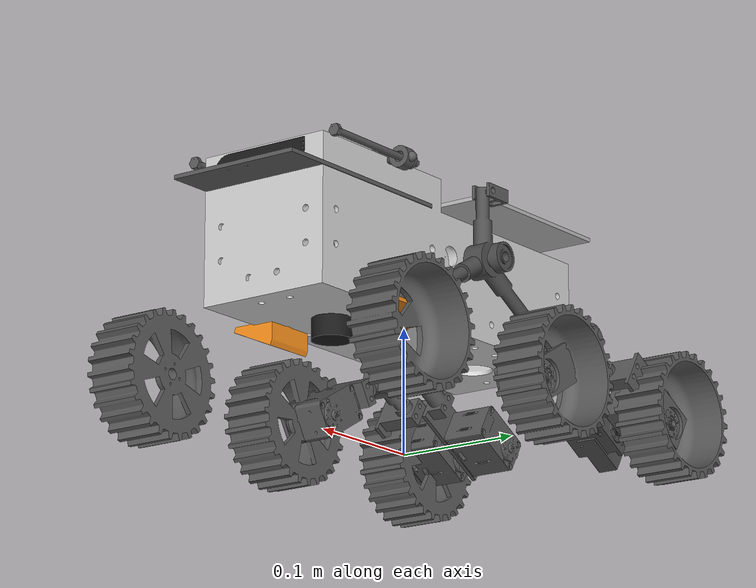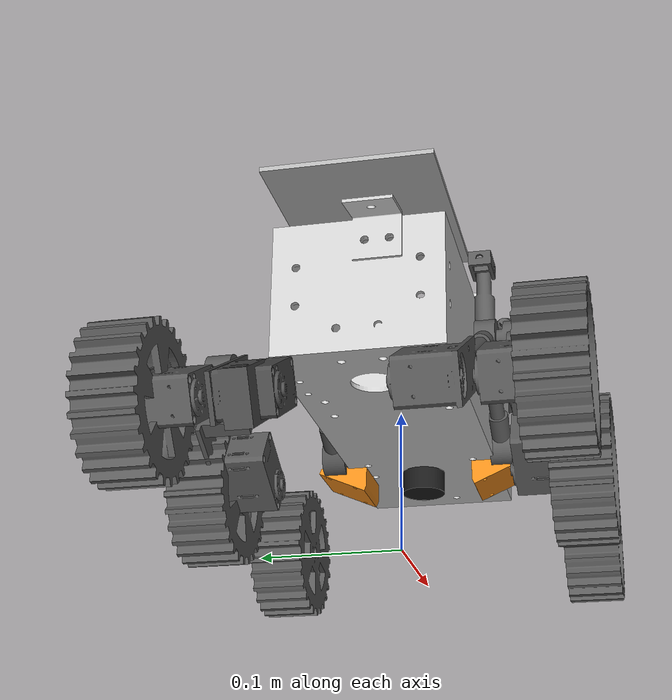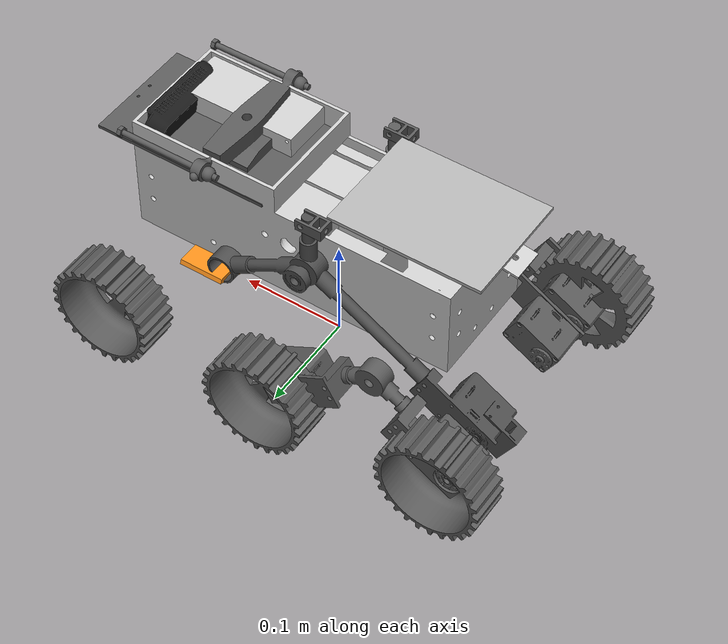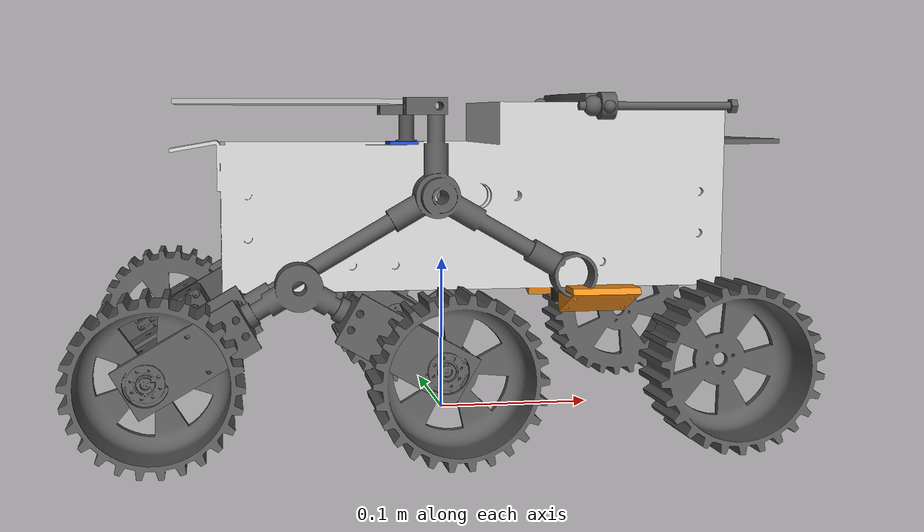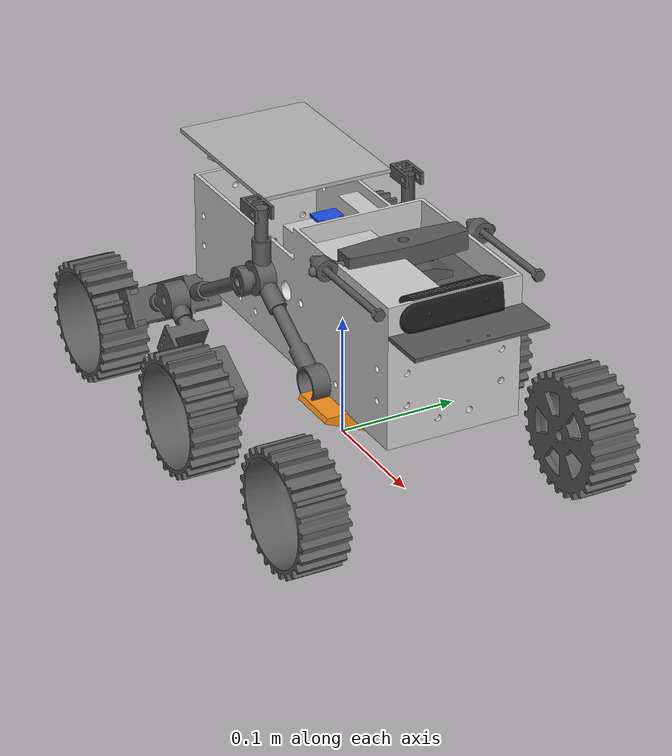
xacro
<?xml version="1.0"?>
<robot xmlns:xacro="http://www.ros.org/wiki/xacro" name="moonmapper">
  <!-- Author joint limits in degrees; URDF consumes radians -->
  <xacro:property name="deg" value="0.017453292519943295"/>
  <!-- pi/180 -->
  <!-- base_footprint ligger i hjulkontakt-plan (z=0 i footprint). base_link-origo er over: min hjul-senter-z i base_link ≈ −0,0792 m, r=0,045 → bunn ≈ −0,1242 m. -->
  <xacro:property name="base_link_z_above_footprint" value="0.1242"/>
  <!-- URDF mimic er for RViz. I Gazebo er mimic ofte av; prisme-ledd uten mimic blir ustabile — bruk use_gazebo:=true for fixed push-rod i sim. -->
  <xacro:arg name="enable_urdf_mimic" default="true"/>
  <xacro:arg name="use_gazebo" default="false"/>
  <!-- simple_collision_debug: kun hjul har kollisjon (ingen rocker/bogie/diff-bar) — anbefalt for Gazebo 6WD-traksjon. -->
  <xacro:arg name="simple_collision_debug" default="false"/>
  <!-- Gazebo urdf2sdf krever inertial på alle links; bruk på TF-only kamera-frames. -->
  <xacro:macro name="negligible_inertial">
    <inertial>
      <origin xyz="0 0 0" rpy="0 0 0"/>
      <mass value="1e-6"/>
      <inertia ixx="1e-12" ixy="0" ixz="0" iyy="1e-12" iyz="0" izz="1e-12"/>
    </inertial>
  </xacro:macro>
  <xacro:macro name="rocker_stl_collision" params="mesh_file">
    <collision>
      <origin xyz="0 0 0" rpy="0 0 0"/>
      <geometry>
        <mesh filename="package://moonmapper_description/meshes/visual/${mesh_file}" scale="1 1 1"/>
      </geometry>
    </collision>
  </xacro:macro>
  <xacro:macro name="rocker_primitive_collision">
  <!-- Raised/shrunk vs full STL: unngår at rocker-boks treffer regolith før hjulene (slip ved rotasjon). -->
    <collision>
      <origin xyz="0 0.010 0" rpy="0 0 0"/>
      <geometry>
        <box size="0.14 0.034 0.034"/>
      </geometry>
    </collision>
  </xacro:macro>
  <xacro:macro name="bogie_primitive_collision">
    <collision>
      <origin xyz="0 0.014 0" rpy="0 0 0"/>
      <geometry>
        <box size="0.10 0.040 0.028"/>
      </geometry>
    </collision>
  </xacro:macro>
  <xacro:macro name="wheel_primitive_collision">
    <collision>
      <origin xyz="0 0 0" rpy="1.5707963267948966 0 0"/>
      <geometry>
        <!-- Målt: r=0,045 m, bredde 0,039 m (sylinder-akse langs Y i link-frame). -->
        <cylinder radius="0.045" length="0.039"/>
      </geometry>
    </collision>
  </xacro:macro>
  <xacro:macro name="diff_bar_primitive_collision">
    <collision>
      <origin xyz="0 0 0" rpy="0 0 0"/>
      <geometry>
        <box size="0.16 0.028 0.028"/>
      </geometry>
    </collision>
  </xacro:macro>
  <!-- base_footprint: masseløst root-frame (REP-105). Masse, treghet og chassis-kollisjon ligger på base_link. -->
  <link name="base_footprint"/>
  <joint name="base_footprint_to_base_link" type="fixed">
    <parent link="base_footprint"/>
    <child link="base_link"/>
    <origin xyz="0 0 ${base_link_z_above_footprint}" rpy="0 0 0"/>
  </joint>
  <link name="base_link">
    <visual>
      <origin xyz="0 0 0" rpy="0 0 0"/>
      <geometry>
        <mesh filename="package://moonmapper_description/meshes/visual/robot_base.stl" scale="1 1 1"/>
      </geometry>
      <material name="gray">
        <color rgba="0.8 0.8 0.8 1.0"/>
      </material>
    </visual>
    <!-- simple_collision_debug: ingen base-bakkekontakt — liten sentrert boks ble «skrapekant» under nesa og ga varig nose-down uavhengig av spawn_z. -->
    <xacro:unless value="$(arg simple_collision_debug)">
    <collision>
      <!-- Primitiv boks, forskjøvet −X/+Z: front (stereo) er ca. +X; boks bakover/opp unngår at underkant tar bakken før hjulene finner likevekt. -->
      <origin xyz="-0.020 0 0.011" rpy="0 0 0"/>
      <geometry>
        <box size="0.048 0.025 0.018"/>
      </geometry>
    </collision>
    </xacro:unless>
    <!-- Gazebo krever inertial paa enhver dynamisk link. Målt masse 0,907 kg; treghet homogen boks 0,305×0,105×0,110 m (ixx=(1/12)m(y²+z²) osv.). -->
    <!-- ADVARSEL: +X er mot FRONT (stereo ~ +0.166 m). Aldri sett base_link inertial x negativ for å «løfte nesa» — det flytter masse BAKOVER. -->
    <inertial>
      <origin xyz="0.038 0 0.010" rpy="0 0 0"/>
      <mass value="0.907"/>
      <inertia ixx="0.0017487" ixy="0" ixz="0" iyy="0.0079457" iyz="0" izz="0.0078645"/>
    </inertial>
  </link>
  <!-- ===================================================================== HOEYRE SIDE ===================================================================== -->
  <link name="rocker_right_link">
    <visual>
      <origin xyz="0 0 0" rpy="0 0 0"/>
      <geometry>
        <mesh filename="package://moonmapper_description/meshes/visual/rocker_right_link.stl" scale="1 1 1"/>
      </geometry>
      <material name="dark_gray">
        <color rgba="0.3 0.3 0.3 1.0"/>
      </material>
    </visual>
    <xacro:unless value="$(arg simple_collision_debug)">
      <xacro:rocker_stl_collision mesh_file="rocker_right_link.stl"/>
    </xacro:unless>
    <inertial>
      <!-- Målt 0,166 kg/stk; treghet estimert som homogen boks = rocker_primitive_collision (0,16×0,042×0,042 m). -->
      <!-- Hjul l1 ligger ca. -0.16 m i X fra pivot; uten offset blir rocker for «tung» foran. Liten +X flytter rapportert CoM mot bogie (−X = bak langs armen). -->
      <origin xyz="0.030 0 -0.028" rpy="0 0 0"/>
      <mass value="0.166"/>
      <inertia ixx="0.0000488" ixy="0" ixz="0" iyy="0.0003785" iyz="0" izz="0.0003785"/>
    </inertial>
  </link>
  <joint name="rocker_right_joint" type="revolute">
    <parent link="base_link"/>
    <child link="rocker_right_link"/>
    <!-- Y: opprinnelig CAD/URDF (git). -->
    <origin xyz="-0.014227 0.065999 0.021756" rpy="0 0 0"/>
    <axis xyz="0 1 0"/>
    <!-- Moderate URDF-demping + Gazebo-kontakt; unngaa for hoey friksjon som låser rocker-bogie. -->
    <dynamics damping="0.10" friction="0.02"/>
    <limit lower="${-35*deg}" upper="${35*deg}" effort="20" velocity="6.0"/>
  </joint>
  <!-- Mellomstykket er sveiset fast i toppen av braketten. -->
  <link name="feste_mellom_feste_og_stang_right_link">
    <visual>
      <origin xyz="0 0 0" rpy="0 0 0"/>
      <geometry>
        <mesh filename="package://moonmapper_description/meshes/visual/feste_mellom_feste_og_stang_right_link.stl" scale="1 1 1"/>
      </geometry>
      <material name="moonmapper_dark_gray">
        <color rgba="0.35 0.35 0.35 1.0"/>
      </material>
    </visual>
    <!-- Målt bracket ~3 g; treghet grovt for liten boks (numerikk). -->
    <inertial>
      <origin xyz="0 0 0" rpy="0 0 0"/>
      <mass value="0.003"/>
      <inertia ixx="2e-8" ixy="0" ixz="0" iyy="2e-8" iyz="0" izz="2e-8"/>
    </inertial>
  </link>

  <xacro:unless value="$(arg use_gazebo)">
    <joint name="feste_mellom_feste_og_stang_right_joint" type="prismatic">
      <parent link="base_link"/>
      <child link="feste_mellom_feste_og_stang_right_link"/>
      <origin xyz="-0.013913 0.067245 0.076373" rpy="0 0 0"/>
      <axis xyz="1 0 0"/>
      <xacro:if value="$(arg enable_urdf_mimic)">
        <mimic joint="rocker_bogie_diff_joint" multiplier="0.05" offset="0.0"/>
      </xacro:if>
      <limit lower="${-1*deg}" upper="${1*deg}" effort="50" velocity="3.0"/>
    </joint>
  </xacro:unless>

  <xacro:if value="$(arg use_gazebo)">
    <joint name="feste_mellom_feste_og_stang_right_joint" type="fixed">
      <parent link="base_link"/>
      <child link="feste_mellom_feste_og_stang_right_link"/>
      <origin xyz="-0.013913 0.067245 0.076373" rpy="0 0 0"/>
    </joint>
  </xacro:if>
  <!-- Staget er sveiset fast i mellomstykket. Tupp-enden som fysisk skal kobles til rocker_bogie_diff_link holdes kun visuelt i naerheten; URDF-treet bryter sloeyfen her. -->
  <link name="stang_right_link">
    <visual>
      <origin xyz="0 0 0" rpy="0 0 0"/>
      <geometry>
        <mesh filename="package://moonmapper_description/meshes/visual/stang_right_link.stl" scale="1 1 1"/>
      </geometry>
      <material name="moonmapper_dark_gray">
        <color rgba="0.35 0.35 0.35 1.0"/>
      </material>
    </visual>
    <inertial>
      <origin xyz="0 0 0" rpy="0 0 0"/>
      <mass value="0.005"/>
      <inertia ixx="1e-8" ixy="0" ixz="0" iyy="1e-8" iyz="0" izz="1e-8"/>
    </inertial>
  </link>
  <xacro:unless value="$(arg use_gazebo)">
    <joint name="stang_right_joint" type="prismatic">
      <parent link="feste_mellom_feste_og_stang_right_link"/>
      <child link="stang_right_link"/>
      <origin xyz="0.101730 0.000140 0.000033" rpy="0 0 0"/>
      <axis xyz="1 0 0"/>
      <xacro:if value="$(arg enable_urdf_mimic)">
        <mimic joint="feste_mellom_feste_og_stang_right_joint" multiplier="0.05" offset="0.0"/>
      </xacro:if>
      <limit lower="${-1*deg}" upper="${1*deg}" effort="50" velocity="3.0"/>
    </joint>
  </xacro:unless>
  <xacro:if value="$(arg use_gazebo)">
    <joint name="stang_right_joint" type="fixed">
      <parent link="feste_mellom_feste_og_stang_right_link"/>
      <child link="stang_right_link"/>
      <origin xyz="0.101730 0.000140 0.000033" rpy="0 0 0"/>
    </joint>
  </xacro:if>

  <link name="feste_mellom_feste_og_stang_left_link">
    <visual>
      <origin xyz="0 0 0" rpy="0 0 0"/>
      <geometry>
        <mesh filename="package://moonmapper_description/meshes/visual/feste_mellom_feste_og_stang_left_link.stl" scale="1 1 1"/>
      </geometry>
      <material name="moonmapper_dark_gray">
        <color rgba="0.35 0.35 0.35 1.0"/>
      </material>
    </visual>
    <!-- Målt bracket ~3 g; treghet grovt for liten boks (numerikk). -->
    <inertial>
      <origin xyz="0 0 0" rpy="0 0 0"/>
      <mass value="0.003"/>
      <inertia ixx="2e-8" ixy="0" ixz="0" iyy="2e-8" iyz="0" izz="2e-8"/>
    </inertial>
  </link>

  <xacro:unless value="$(arg use_gazebo)">
    <joint name="feste_mellom_feste_og_stang_left_joint" type="prismatic">
      <parent link="base_link"/>
      <child link="feste_mellom_feste_og_stang_left_link"/>
      <origin xyz="-0.013977 -0.064006 0.076371" rpy="0 0 0"/>
      <xacro:if value="$(arg enable_urdf_mimic)">
        <mimic joint="rocker_bogie_diff_joint" multiplier="0.05" offset="0.0"/>
      </xacro:if>
      <axis xyz="-1 0 0"/>
      <limit lower="${-1*deg}" upper="${1*deg}" effort="50" velocity="3.0"/>
    </joint>
  </xacro:unless>
  <xacro:if value="$(arg use_gazebo)">
    <joint name="feste_mellom_feste_og_stang_left_joint" type="fixed">
      <parent link="base_link"/>
      <child link="feste_mellom_feste_og_stang_left_link"/>
      <origin xyz="-0.013977 -0.064006 0.076371" rpy="0 0 0"/>
    </joint>
  </xacro:if>

  <link name="stang_left_link">
    <visual>
      <origin xyz="0 0 0" rpy="0 0 0"/>
      <geometry>
        <mesh filename="package://moonmapper_description/meshes/visual/stang_left_link.stl" scale="1 1 1"/>
      </geometry>
      <material name="moonmapper_dark_gray">
        <color rgba="0.35 0.35 0.35 1.0"/>
      </material>
    </visual>
    <inertial>
      <origin xyz="0 0 0" rpy="0 0 0"/>
      <mass value="0.005"/>
      <inertia ixx="1e-8" ixy="0" ixz="0" iyy="1e-8" iyz="0" izz="1e-8"/>
    </inertial>
  </link>
  <xacro:unless value="$(arg use_gazebo)">

    <joint name="stang_left_joint" type="prismatic">
      <parent link="feste_mellom_feste_og_stang_left_link"/>
      <child link="stang_left_link"/>
      <origin xyz="0.101903 -0.001198 0.000110" rpy="0 0 0"/>
      <axis xyz="1 0 0"/>
      <xacro:if value="$(arg enable_urdf_mimic)">
        <mimic joint="feste_mellom_feste_og_stang_left_joint" multiplier="0.05" offset="0.0"/>
      </xacro:if>
      <limit lower="${-1*deg}" upper="${1*deg}" effort="50" velocity="3.0"/>
    </joint>
  </xacro:unless>
  <xacro:if value="$(arg use_gazebo)">
    <joint name="stang_left_joint" type="fixed">
      <parent link="feste_mellom_feste_og_stang_left_link"/>
      <child link="stang_left_link"/>
      <origin xyz="0.101903 -0.001198 0.000110" rpy="0 0 0"/>
    </joint>
  </xacro:if>

  <link name="bogie_right_link">
    <visual>
      <origin xyz="0 0 0" rpy="0 0 0"/>
      <geometry>
        <mesh filename="package://moonmapper_description/meshes/visual/bogie_right_link.stl" scale="1 1 1"/>
      </geometry>
      <material name="moonmapper_dark_gray">
        <color rgba="0.35 0.35 0.35 1.0"/>
      </material>
    </visual>
    <xacro:unless value="$(arg simple_collision_debug)">
      <xacro:rocker_stl_collision mesh_file="bogie_right_link.stl"/>
    </xacro:unless>
    <inertial>
      <!-- Målt 0,112 kg/stk; treghet homogen boks = bogie_primitive_collision (0,12×0,052×0,052 m). -->
      <origin xyz="0 0 0" rpy="0 0 0"/>
      <mass value="0.112"/>
      <inertia ixx="0.0000505" ixy="0" ixz="0" iyy="0.0001596" iyz="0" izz="0.0001596"/>
    </inertial>
  </link>
  <joint name="bogie_right_joint" type="revolute">
    <parent link="rocker_right_link"/>
    <child link="bogie_right_link"/>
    <!-- Origin = (gammel bogie-in-feste-frame) - (gammel rocker-in-feste-frame). -->
    <origin xyz="-0.087545 0.025322 -0.050495" rpy="0 0 0"/>
    <axis xyz="0 1 0"/>
    <dynamics damping="0.08" friction="0.015"/>
    <limit lower="${-45*deg}" upper="${45*deg}" effort="20" velocity="6.0"/>
  </joint>
  <!-- Hoeyre hjul: r1 paa rocker, r2+r3 paa bogie. Continuous (ingen limits). -->
  <link name="wheel_r1_link">
    <visual>
      <origin xyz="0 0 0" rpy="0 0 0"/>
      <geometry>
        <mesh filename="package://moonmapper_description/meshes/visual/wheel_r1_link.stl" scale="1 1 1"/>
      </geometry>
      <material name="moonmapper_dark_gray">
        <color rgba="0.35 0.35 0.35 1.0"/>
      </material>
    </visual>
    <xacro:wheel_primitive_collision/>
    <inertial>
      <!-- Hjul 0,048 kg + tidl. motor 0,062 kg slatt inn i hjullink (ingen motor_*); sylinder om Y, r=0,045, w=0,039, m=0,11. -->
      <origin xyz="0 0 0" rpy="0 0 0"/>
      <mass value="0.110"/>
      <inertia ixx="0.0000697" ixy="0" ixz="0" iyy="0.0001114" iyz="0" izz="0.0000697"/>
    </inertial>
  </link>

  <joint name="wheel_r1_joint" type="continuous">
    <parent link="rocker_right_link"/>
    <child link="wheel_r1_link"/>
    <origin xyz="0.170916 0.039688 -0.099612" rpy="0 0 0"/>
    <axis xyz="0 1 0"/>
    <dynamics damping="0.01" friction="0.0"/>
    <limit effort="60.0" velocity="40.0"/>
  </joint>
  <link name="wheel_r2_link">
    <visual>
      <origin xyz="0 0 0" rpy="0 0 0"/>
      <geometry>
        <mesh filename="package://moonmapper_description/meshes/visual/wheel_r2_link.stl" scale="1 1 1"/>
      </geometry>
      <material name="moonmapper_dark_gray">
        <color rgba="0.35 0.35 0.35 1.0"/>
      </material>
    </visual>
    <xacro:wheel_primitive_collision/>
    <inertial>
      <!-- Hjul 0,048 kg + tidl. motor 0,062 kg slatt inn i hjullink (ingen motor_*); sylinder om Y, r=0,045, w=0,039, m=0,11. -->
      <origin xyz="0 0 0" rpy="0 0 0"/>
      <mass value="0.110"/>
      <inertia ixx="0.0000697" ixy="0" ixz="0" iyy="0.0001114" iyz="0" izz="0.0000697"/>
    </inertial>
  </link>

  <joint name="wheel_r2_joint" type="continuous">
    <parent link="bogie_right_link"/>
    <child link="wheel_r2_link"/>
    <origin xyz="0.088585 0.022644 -0.050672" rpy="0 0 0"/>
    <axis xyz="0 1 0"/>
    <dynamics damping="0.01" friction="0.0"/>
    <limit effort="60.0" velocity="40.0"/>
  </joint>
  <link name="wheel_r3_link">
    <visual>
      <origin xyz="0 0 0" rpy="0 0 0"/>
      <geometry>
        <mesh filename="package://moonmapper_description/meshes/visual/wheel_r3_link.stl" scale="1 1 1"/>
      </geometry>
      <material name="moonmapper_dark_gray">
        <color rgba="0.35 0.35 0.35 1.0"/>
      </material>
    </visual>
    <xacro:wheel_primitive_collision/>
    <inertial>
      <!-- Hjul 0,048 kg + tidl. motor 0,062 kg slatt inn i hjullink (ingen motor_*); sylinder om Y, r=0,045, w=0,039, m=0,11. -->
      <origin xyz="0 0 0" rpy="0 0 0"/>
      <mass value="0.110"/>
      <inertia ixx="0.0000697" ixy="0" ixz="0" iyy="0.0001114" iyz="0" izz="0.0000697"/>
    </inertial>
  </link>

  <joint name="wheel_r3_joint" type="continuous">
    <parent link="bogie_right_link"/>
    <child link="wheel_r3_link"/>
    <origin xyz="-0.081571 0.016915 -0.048426" rpy="0 0 0"/>
    <axis xyz="0 1 0"/>
    <dynamics damping="0.01" friction="0.0"/>
    <limit effort="60.0" velocity="40.0"/>
  </joint>
  <!-- ===================================================================== VENSTRE SIDE (speilbilde av hoeyre) ===================================================================== -->
  <link name="rocker_left_link">
    <visual>
      <origin xyz="0 0 0" rpy="0 0 0"/>
      <geometry>
        <mesh filename="package://moonmapper_description/meshes/visual/rocker_left_link.stl" scale="1 1 1"/>
      </geometry>
      <material name="moonmapper_dark_gray">
        <color rgba="0.35 0.35 0.35 1.0"/>
      </material>
    </visual>
    <xacro:unless value="$(arg simple_collision_debug)">
      <xacro:rocker_stl_collision mesh_file="rocker_left_link.stl"/>
    </xacro:unless>
    <!-- Samme masse/treghet som rocker_right (speilet mekanikk). -->
    <inertial>
      <origin xyz="0.030 0 -0.028" rpy="0 0 0"/>
      <mass value="0.166"/>
      <inertia ixx="0.0000488" ixy="0" ixz="0" iyy="0.0003785" iyz="0" izz="0.0003785"/>
    </inertial>
  </link>

  <joint name="rocker_left_joint" type="revolute">
    <parent link="base_link"/>
    <child link="rocker_left_link"/>
    <!-- Opprinnelig URDF (git). -->
    <origin xyz="-0.014252 -0.064048 0.021830" rpy="0 0 0"/>
    <axis xyz="0 1 0"/>
    <dynamics damping="0.10" friction="0.02"/>
    <limit lower="${-35*deg}" upper="${35*deg}" effort="20" velocity="6.0"/>
    <xacro:if value="$(arg enable_urdf_mimic)">
      <mimic joint="rocker_right_joint" multiplier="-1.0" offset="0.0"/>
    </xacro:if>
  </joint>
  <!-- Bogie venstre. Origin = (0.013707,0.001287,-0.008001)-(-0.013851,0.001264,-0.007984) = (0.027558, 0.000023, -0.000017) -->
  <link name="bogie_left_link">
    <visual>
      <origin xyz="0 0 0" rpy="0 0 0"/>
      <geometry>
        <mesh filename="package://moonmapper_description/meshes/visual/bogie_left_link.stl" scale="1 1 1"/>
      </geometry>
      <material name="moonmapper_dark_gray">
        <color rgba="0.35 0.35 0.35 1.0"/>
      </material>
    </visual>
    <xacro:unless value="$(arg simple_collision_debug)">
      <xacro:rocker_stl_collision mesh_file="bogie_left_link.stl"/>
    </xacro:unless>
    <inertial>
      <!-- Målt 0,112 kg/stk; treghet homogen boks = bogie_primitive_collision (0,12×0,052×0,052 m). -->
      <origin xyz="0 0 0" rpy="0 0 0"/>
      <mass value="0.112"/>
      <inertia ixx="0.0000505" ixy="0" ixz="0" iyy="0.0001596" iyz="0" izz="0.0001596"/>
    </inertial>
  </link>

  <joint name="bogie_left_joint" type="revolute">
    <parent link="rocker_left_link"/>
    <child link="bogie_left_link"/>
    <origin xyz="-0.087063 -0.025935 -0.050645" rpy="0 0 0"/>
    <axis xyz="0 1 0"/>
    <dynamics damping="0.08" friction="0.015"/>
    <limit lower="${-45*deg}" upper="${45*deg}" effort="20" velocity="6.0"/>
  </joint>
  <!-- Venstre hjul: l1 paa rocker, l2+l3 paa bogie. Continuous (ingen limits). -->
  <link name="wheel_l1_link">
    <visual>
      <origin xyz="0 0 0" rpy="0 0 0"/>
      <geometry>
        <mesh filename="package://moonmapper_description/meshes/visual/wheel_l1_link.stl" scale="1 1 1"/>
      </geometry>
      <material name="moonmapper_dark_gray">
        <color rgba="0.35 0.35 0.35 1.0"/>
      </material>
    </visual>
    <xacro:wheel_primitive_collision/>
    <inertial>
      <!-- Hjul 0,048 kg + tidl. motor 0,062 kg slatt inn i hjullink (ingen motor_*); sylinder om Y, r=0,045, w=0,039, m=0,11. -->
      <origin xyz="0 0 0" rpy="0 0 0"/>
      <mass value="0.110"/>
      <inertia ixx="0.0000697" ixy="0" ixz="0" iyy="0.0001114" iyz="0" izz="0.0000697"/>
    </inertial>
  </link>

  <joint name="wheel_l1_joint" type="continuous">
    <parent link="rocker_left_link"/>
    <child link="wheel_l1_link"/>
    <origin xyz="0.170218 -0.040994 -0.100687" rpy="0 0 0"/>
    <axis xyz="0 1 0"/>
    <dynamics damping="0.01" friction="0.0"/>
    <limit effort="60.0" velocity="40.0"/>
  </joint>

  <link name="wheel_l2_link">
    <visual>
      <origin xyz="0 0 0" rpy="0 0 0"/>
      <geometry>
        <mesh filename="package://moonmapper_description/meshes/visual/wheel_l2_link.stl" scale="1 1 1"/>
      </geometry>
      <material name="moonmapper_dark_gray">
        <color rgba="0.35 0.35 0.35 1.0"/>
      </material>
    </visual>
    <xacro:wheel_primitive_collision/>
    <inertial>
      <!-- Hjul 0,048 kg + tidl. motor 0,062 kg slatt inn i hjullink (ingen motor_*); sylinder om Y, r=0,045, w=0,039, m=0,11. -->
      <origin xyz="0 0 0" rpy="0 0 0"/>
      <mass value="0.110"/>
      <inertia ixx="0.0000697" ixy="0" ixz="0" iyy="0.0001114" iyz="0" izz="0.0000697"/>
    </inertial>
  </link>

  <joint name="wheel_l2_joint" type="continuous">
    <parent link="bogie_left_link"/>
    <child link="wheel_l2_link"/>
    <origin xyz="0.087657 -0.020188 -0.050374" rpy="0 0 0"/>
    <axis xyz="0 1 0"/>
    <dynamics damping="0.01" friction="0.0"/>
    <limit effort="60.0" velocity="40.0"/>
  </joint>
  <link name="wheel_l3_link">
    <visual>
      <origin xyz="0 0 0" rpy="0 0 0"/>
      <geometry>
        <mesh filename="package://moonmapper_description/meshes/visual/wheel_l3_link.stl" scale="1 1 1"/>
      </geometry>
      <material name="moonmapper_dark_gray">
        <color rgba="0.35 0.35 0.35 1.0"/>
      </material>
    </visual>
    <xacro:wheel_primitive_collision/>
    <inertial>
      <!-- Hjul 0,048 kg + tidl. motor 0,062 kg slatt inn i hjullink (ingen motor_*); sylinder om Y, r=0,045, w=0,039, m=0,11. -->
      <origin xyz="0 0 0" rpy="0 0 0"/>
      <mass value="0.110"/>
      <inertia ixx="0.0000697" ixy="0" ixz="0" iyy="0.0001114" iyz="0" izz="0.0000697"/>
    </inertial>
  </link>
  <!-- wheel l3 joint -->
  <joint name="wheel_l3_joint" type="continuous">
    <parent link="bogie_left_link"/>
    <child link="wheel_l3_link"/>
    <origin xyz="-0.082028 -0.018253 -0.048350" rpy="0 0 0"/>
    <axis xyz="0 1 0"/>
    <dynamics damping="0.01" friction="0.0"/>
    <limit effort="60.0" velocity="40.0"/>
  </joint>
  <transmission name="wheel_l1_trans">
    <type>transmission_interface/SimpleTransmission</type>
    <joint name="wheel_l1_joint">
      <hardwareInterface>hardware_interface/VelocityJointInterface</hardwareInterface>
    </joint>
    <actuator name="wheel_l1_motor">
      <hardwareInterface>hardware_interface/VelocityJointInterface</hardwareInterface>
      <mechanicalReduction>1</mechanicalReduction>
    </actuator>
  </transmission>
  <transmission name="wheel_l2_trans">
    <type>transmission_interface/SimpleTransmission</type>
    <joint name="wheel_l2_joint">
      <hardwareInterface>hardware_interface/VelocityJointInterface</hardwareInterface>
    </joint>
    <actuator name="wheel_l2_motor">
      <hardwareInterface>hardware_interface/VelocityJointInterface</hardwareInterface>
      <mechanicalReduction>1</mechanicalReduction>
    </actuator>
  </transmission>
  <transmission name="wheel_l3_trans">
    <type>transmission_interface/SimpleTransmission</type>
    <joint name="wheel_l3_joint">
      <hardwareInterface>hardware_interface/VelocityJointInterface</hardwareInterface>
    </joint>
    <actuator name="wheel_l3_motor">
      <hardwareInterface>hardware_interface/VelocityJointInterface</hardwareInterface>
      <mechanicalReduction>1</mechanicalReduction>
    </actuator>
  </transmission>
  <transmission name="wheel_r1_trans">
    <type>transmission_interface/SimpleTransmission</type>
    <joint name="wheel_r1_joint">
      <hardwareInterface>hardware_interface/VelocityJointInterface</hardwareInterface>
    </joint>
    <actuator name="wheel_r1_motor">
      <hardwareInterface>hardware_interface/VelocityJointInterface</hardwareInterface>
      <mechanicalReduction>1</mechanicalReduction>
    </actuator>
  </transmission>
  <transmission name="wheel_r2_trans">
    <type>transmission_interface/SimpleTransmission</type>
    <joint name="wheel_r2_joint">
      <hardwareInterface>hardware_interface/VelocityJointInterface</hardwareInterface>
    </joint>
    <actuator name="wheel_r2_motor">
      <hardwareInterface>hardware_interface/VelocityJointInterface</hardwareInterface>
      <mechanicalReduction>1</mechanicalReduction>
    </actuator>
  </transmission>
  <transmission name="wheel_r3_trans">
    <type>transmission_interface/SimpleTransmission</type>
    <joint name="wheel_r3_joint">
      <hardwareInterface>hardware_interface/VelocityJointInterface</hardwareInterface>
    </joint>
    <actuator name="wheel_r3_motor">
      <hardwareInterface>hardware_interface/VelocityJointInterface</hardwareInterface>
      <mechanicalReduction>1</mechanicalReduction>
    </actuator>
  </transmission>
  <!-- feste_rocker_karosseri maa defineres FOER rocker_bogie_diff_joint (foreldre-link). -->
  <link name="feste_rocker_karosseri_link">
    <visual>
      <origin xyz="0 0 0" rpy="0 0 0"/>
      <geometry>
        <mesh filename="package://moonmapper_description/meshes/visual/feste_rocker_til_karosseri_link.stl" scale="1 1 1"/>
      </geometry>
      <material name="moonmapper_dark_gray">
        <color rgba="0.35 0.35 0.35 1.0"/>
      </material>
    </visual>
    <inertial>
      <!-- Målt stand/lang skrue ~0,020 kg; treghet estimert som liten boks ~25×25×15 mm. -->
      <origin xyz="0 0 0" rpy="0 0 0"/>
      <mass value="0.020"/>
      <inertia ixx="1.4e-6" ixy="0" ixz="0" iyy="2.1e-6" iyz="0" izz="2.1e-6"/>
    </inertial>
  </link>

  <joint name="feste_rocker_karosseri_joint" type="fixed">
    <parent link="base_link"/>
    <child link="feste_rocker_karosseri_link"/>
    <origin xyz="0.091894 0.000000 0.061503" rpy="0 0 0"/>
  </joint>

  <link name="rocker_bogie_diff_link">
    <visual>
      <origin xyz="0 0 0" rpy="0 0 0"/>
      <geometry>
        <mesh filename="package://moonmapper_description/meshes/visual/rocker_bogie_diff_link.stl" scale="1 1 1"/>
      </geometry>
      <material name="moonmapper_dark_gray">
        <color rgba="0.35 0.35 0.35 1.0"/>
      </material>
    </visual>
    <xacro:unless value="$(arg simple_collision_debug)">
      <xacro:rocker_stl_collision mesh_file="rocker_bogie_diff_link.stl"/>
    </xacro:unless>
    <!-- Målt diff-stav 0,060 kg; treghet homogen boks = diff_bar_primitive_collision (0,16×0,028×0,028 m). -->
    <inertial>
      <origin xyz="0 0 0" rpy="0 0 0"/>
      <mass value="0.060"/>
      <inertia ixx="0.00000784" ixy="0" ixz="0" iyy="0.0001319" iyz="0" izz="0.0001319"/>
    </inertial>
  </link>
  <link name="stang_left_tip_link">
    <!-- Bruk primitiv visual her: mesh-filene hengsel_diff_* finnes ikke i moonmapper_description/meshes/visual i denne repo-versjonen. -->
    <visual>
      <origin xyz="0 0 0" rpy="0 0 0"/>
      <geometry>
        <sphere radius="0.004"/>
      </geometry>
      <material name="moonmapper_dark_gray">
        <color rgba="0.35 0.35 0.35 1.0"/>
      </material>
    </visual>
    <inertial>
      <origin xyz="0 0 0" rpy="0 0 0"/>
      <mass value="0.001"/>
      <inertia ixx="1e-8" ixy="0" ixz="0" iyy="1e-8" iyz="0" izz="1e-8"/>
    </inertial>
  </link>
  <joint name="stang_left_tip_joint" type="fixed">
    <parent link="rocker_bogie_diff_link"/>
    <child link="stang_left_tip_link"/>
    <origin xyz="0.0 0.0747 0.0" rpy="0 0 0"/>
  </joint>
  <link name="stang_right_tip_link">
    <visual>
      <origin xyz="0 0 0" rpy="0 0 0"/>
      <geometry>
        <sphere radius="0.004"/>
      </geometry>
      <material name="moonmapper_dark_gray">
        <color rgba="0.35 0.35 0.35 1.0"/>
      </material>
    </visual>
    <inertial>
      <origin xyz="0 0 0" rpy="0 0 0"/>
      <mass value="0.001"/>
      <inertia ixx="1e-8" ixy="0" ixz="0" iyy="1e-8" iyz="0" izz="1e-8"/>
    </inertial>
  </link>
  <joint name="stang_right_tip_joint" type="fixed">
    <parent link="rocker_bogie_diff_link"/>
    <child link="stang_right_tip_link"/>
    <origin xyz="0.0 -0.0747 0.0" rpy="0 0 0"/>
  </joint>
  <joint name="rocker_bogie_diff_joint" type="revolute">
    <parent link="feste_rocker_karosseri_link"/>
    <child link="rocker_bogie_diff_link"/>
    <origin xyz="0.000109 0.001094 0.014506" rpy="0 0 0"/>
    <axis xyz="0 0 1"/>
    <!-- Diff-staven er lett; lav URDF-demping så plugin/terreng ikke konkurrerer. -->
    <dynamics damping="0.05" friction="0.015"/>
    <!-- Høy effort/velocity-limit slik at passiv diff ikke klipper unødig. -->
    <limit lower="${-90*deg}" upper="${90*deg}" effort="100" velocity="10.0"/>
    <xacro:if value="$(arg enable_urdf_mimic)">
      <mimic joint="rocker_right_joint" multiplier="0.82" offset="0.0"/>
    </xacro:if>
  </joint>
  <!-- === Tak (skroghette over kjernen av chassiset) === -->
  <link name="tak_liten_link">
    <visual>
      <origin xyz="0 0 0" rpy="0 0 0"/>
      <geometry>
        <mesh filename="package://moonmapper_description/meshes/visual/Tak_liten_link.stl" scale="1 1 1"/>
      </geometry>
      <material name="moonmapper_light_gray">
        <color rgba="0.7 0.7 0.7 1.0"/>
      </material>
    </visual>
    <inertial>
      <origin xyz="0 0 0" rpy="0 0 0"/>
      <mass value="0.010"/>
      <inertia ixx="1e-7" ixy="0" ixz="0" iyy="1e-7" iyz="0" izz="1e-7"/>
    </inertial>
  </link>
  <joint name="tak_liten_joint" type="fixed">
    <parent link="base_link"/>
    <child link="tak_liten_link"/>
    <origin xyz="-0.100194 0.000939 0.079219" rpy="0 0 0"/>
  </joint>
  <!-- SENSORER: IMU + stereokamera -->
  <!-- Linkene defineres her i base-URDF slik at BAADE RViz og Gazebo -->
  <!-- ser samme kinematikk/TF. Fysikk- og sensor-tag-ene ligger i -->
  <!-- moonmapper_rover_gazebo.urdf.xacro (aktiveres kun i sim). -->
  <!-- === IMU (midten av basen, like over CG) === -->
  <!-- Bruker nytt STL-mesh fra Blender. Om meshen vises forskjoevet, sett joint-origo til "0 0 0" (hvis mesh-koordinater allerede er i base_link-frame) eller oppgi reell xyz fra Blender. -->
  <link name="imu_link">
    <visual>
      <origin xyz="0 0 0" rpy="0 0 0"/>
      <geometry>
        <mesh filename="package://moonmapper_description/meshes/visual/IMU_link.stl" scale="1 1 1"/>
      </geometry>
      <material name="imu_blue">
        <color rgba="0.1 0.3 0.9 1.0"/>
      </material>
    </visual>
    <inertial>
      <origin xyz="0 0 0" rpy="0 0 0"/>
      <mass value="0.002"/>
      <inertia ixx="1e-8" ixy="0" ixz="0" iyy="1e-8" iyz="0" izz="1e-8"/>
    </inertial>
  </link>
  <joint name="imu_joint" type="fixed">
    <parent link="base_link"/>
    <child link="imu_link"/>
    <origin xyz="-0.020281 0.000988 0.052512" rpy="0 0 0"/>
  </joint>
  <!-- === Stereokamera-hus (fronten av basen) === -->
  <!-- Mesh er ~4x13x4 mm, oppgitt i meter. Plasseres paa fronten av basen, litt over toppen. -->
  <link name="stereo_camera_link">
    <visual>
      <origin xyz="0 0 0" rpy="0 0 0"/>
      <geometry>
        <mesh filename="package://moonmapper_description/meshes/visual/steriokamera_link.stl" scale="1 1 1"/>
      </geometry>
      <material name="cam_black">
        <color rgba="0.1 0.1 0.1 1.0"/>
      </material>
    </visual>
    <!-- Ingen kollisjon i Gazebo; sensorer festes på base_link (gz-xacro). -->
    <xacro:unless value="$(arg use_gazebo)">
      <xacro:unless value="$(arg simple_collision_debug)">
        <collision>
          <origin xyz="0 0 0" rpy="0 0 0"/>
          <geometry>
            <mesh filename="package://moonmapper_description/meshes/visual/steriokamera_link.stl" scale="1 1 1"/>
          </geometry>
        </collision>
      </xacro:unless>
    </xacro:unless>
    <xacro:if value="$(arg use_gazebo)">
      <xacro:negligible_inertial/>
    </xacro:if>
    <xacro:unless value="$(arg use_gazebo)">
      <inertial>
        <origin xyz="0 0 0" rpy="0 0 0"/>
        <mass value="0.002"/>
        <inertia ixx="2e-7" ixy="0" ixz="0" iyy="2e-7" iyz="0" izz="2e-7"/>
      </inertial>
    </xacro:unless>
  </link>
  <joint name="stereo_camera_joint" type="fixed">
    <parent link="base_link"/>
    <child link="stereo_camera_link"/>
    <!-- Front = +X i base_link (REP-103). π rundt Z speiler CAD-mesh slik at huset sitter på nesa. -->
    <origin xyz="0.165483 0.004944 0.068584" rpy="0 0 0"/>
  </joint>
  <!-- === Venstre kamera: fysisk frame + optisk frame === -->
  <!-- Venstre = +y (ROS: +y peker til venstre) -->
  <!-- === Venstre kamera === -->
  <link name="stereo_left_camera_link">
    <xacro:negligible_inertial/>
  </link>

  <joint name="stereo_left_camera_joint" type="fixed">
    <parent link="stereo_camera_link"/>
    <child link="stereo_left_camera_link"/>
    <origin xyz="0.032910 0.034100 0.002791" rpy="0 0 0"/>
  </joint>

  <link name="stereo_left_optical_frame"/>

  <joint name="stereo_left_optical_joint" type="fixed">
    <parent link="stereo_left_camera_link"/>
    <child link="stereo_left_optical_frame"/>
    <origin xyz="0 0 0" rpy="-1.57079632679 0 -1.57079632679"/>
  </joint>

  <!-- === Høyre kamera === -->
  <link name="stereo_right_camera_link">
    <xacro:negligible_inertial/>
  </link>

  <joint name="stereo_right_camera_joint" type="fixed">
    <parent link="stereo_camera_link"/>
    <child link="stereo_right_camera_link"/>
    <origin xyz="0.032910 -0.032034 0.002791" rpy="0 0 0"/>
  </joint>

  <link name="stereo_right_optical_frame"/>

  <joint name="stereo_right_optical_joint" type="fixed">
    <parent link="stereo_right_camera_link"/>
    <child link="stereo_right_optical_frame"/>
    <origin xyz="0 0 0" rpy="-1.57079632679 0 -1.57079632679"/>
  </joint>
  <link name="depth_camera_link">
    <xacro:negligible_inertial/>
  </link>
  <joint name="depth_camera_joint" type="fixed">
    <parent link="stereo_camera_link"/>
    <child link="depth_camera_link"/>
    <origin xyz="0.039709 0.002014 0.002791" rpy="0 0 0"/>
  </joint>
  <link name="depth_camera_optical_frame"/>

  <joint name="depth_camera_optical_joint" type="fixed">
    <parent link="depth_camera_link"/>
    <child link="depth_camera_optical_frame"/>
    <!-- ROS optical frame: x=right, y=down, z=forward -->
    <origin xyz="0 0 0" rpy="-1.57079632679 0 -1.57079632679"/>
  </joint>
  <!-- NYE KOMPONENTER fra Blender-modellen -->
  <!-- Alle joint-origos er satt til "0 0 0" og forutsetter at -->
  <!-- STL-meshen ble eksportert UTEN aa re-origine objektet i -->
  <!-- Blender - dvs. at vertex-koordinater staar i foreldrens frame -->
  <!-- (typisk base_link/world). Hvis noe vises forskjoevet i RViz, -->
  <!-- oppdater joint-origo til Blender-lokasjonen til objektet. -->
  <!-- === Braketter som kobler rocker til bogie-pivot (venstre/hoeyre) === -->
  <!-- Festet til rocker-linken slik at bracketen roterer med rockeren. -->
  <!-- === Hall-effekt-sensor (festet paa basen for rotasjonsmaaling) === -->
  <!-- === Mikroskop (nede-pekende observasjonskamera) === -->
  <link name="mikroskop_link">
    <visual>
      <origin xyz="0 0 0" rpy="0 0 0"/>
      <geometry>
        <mesh filename="package://moonmapper_description/meshes/visual/Mikroskop_link.stl" scale="1 1 1"/>
      </geometry>
      <material name="cam_black">
        <color rgba="0.1 0.1 0.1 1.0"/>
      </material>
    </visual>
    <inertial>
      <origin xyz="0 0 0" rpy="0 0 0"/>
      <mass value="0.005"/>
      <inertia ixx="1e-8" ixy="0" ixz="0" iyy="1e-8" iyz="0" izz="1e-8"/>
    </inertial>
  </link>
  <joint name="mikroskop_joint" type="fixed">
    <parent link="base_link"/>
    <child link="mikroskop_link"/>
    <origin xyz="0.091849 0.001046 -0.006375" rpy="0 0 0"/>
  </joint>
  <!-- Optisk frame for mikroskop (ROS optical convention) -->
  <link name="mikroskop_optical_frame"/>
  <joint name="mikroskop_optical_joint" type="fixed">
    <parent link="mikroskop_link"/>
    <child link="mikroskop_optical_frame"/>
    <!-- ROS optical frame: x=right, y=down, z=forward -->
    <origin xyz="0 0 0" rpy="-0 0 -0"/>
  </joint>
  <!-- === Triad-sensorer (magnetometer/solvektor) === -->
  <link name="triad_sensor_1_link">
    <visual>
      <origin xyz="0 0 0" rpy="0 0 0"/>
      <geometry>
        <mesh filename="package://moonmapper_description/meshes/visual/triadsensor1_link.stl" scale="1 1 1"/>
      </geometry>
      <material name="triad_orange">
        <color rgba="0.95 0.55 0.1 1.0"/>
      </material>
    </visual>
    <inertial>
      <origin xyz="0 0 0" rpy="0 0 0"/>
      <mass value="0.002"/>
      <inertia ixx="1e-9" ixy="0" ixz="0" iyy="1e-9" iyz="0" izz="1e-9"/>
    </inertial>
  </link>
  <joint name="triad_sensor_1_joint" type="fixed">
    <parent link="base_link"/>
    <child link="triad_sensor_1_link"/>
    <origin xyz="0.091911 -0.046088 -0.043464" rpy="0 0 0"/>
  </joint>
  <link name="triad_sensor_2_link">
    <visual>
      <origin xyz="0 0 0" rpy="0 0 0"/>
      <geometry>
        <mesh filename="package://moonmapper_description/meshes/visual/triadsensor2_link.stl" scale="1 1 1"/>
      </geometry>
      <material name="triad_orange">
        <color rgba="0.95 0.55 0.1 1.0"/>
      </material>
    </visual>
    <inertial>
      <origin xyz="0 0 0" rpy="0 0 0"/>
      <mass value="0.002"/>
      <inertia ixx="1e-9" ixy="0" ixz="0" iyy="1e-9" iyz="0" izz="1e-9"/>
    </inertial>
  </link>
  <joint name="triad_sensor_2_joint" type="fixed">
    <parent link="base_link"/>
    <child link="triad_sensor_2_link"/>
    <origin xyz="0.091833 0.048139 -0.043518" rpy="0 0 0"/>
  </joint>
</robot>
